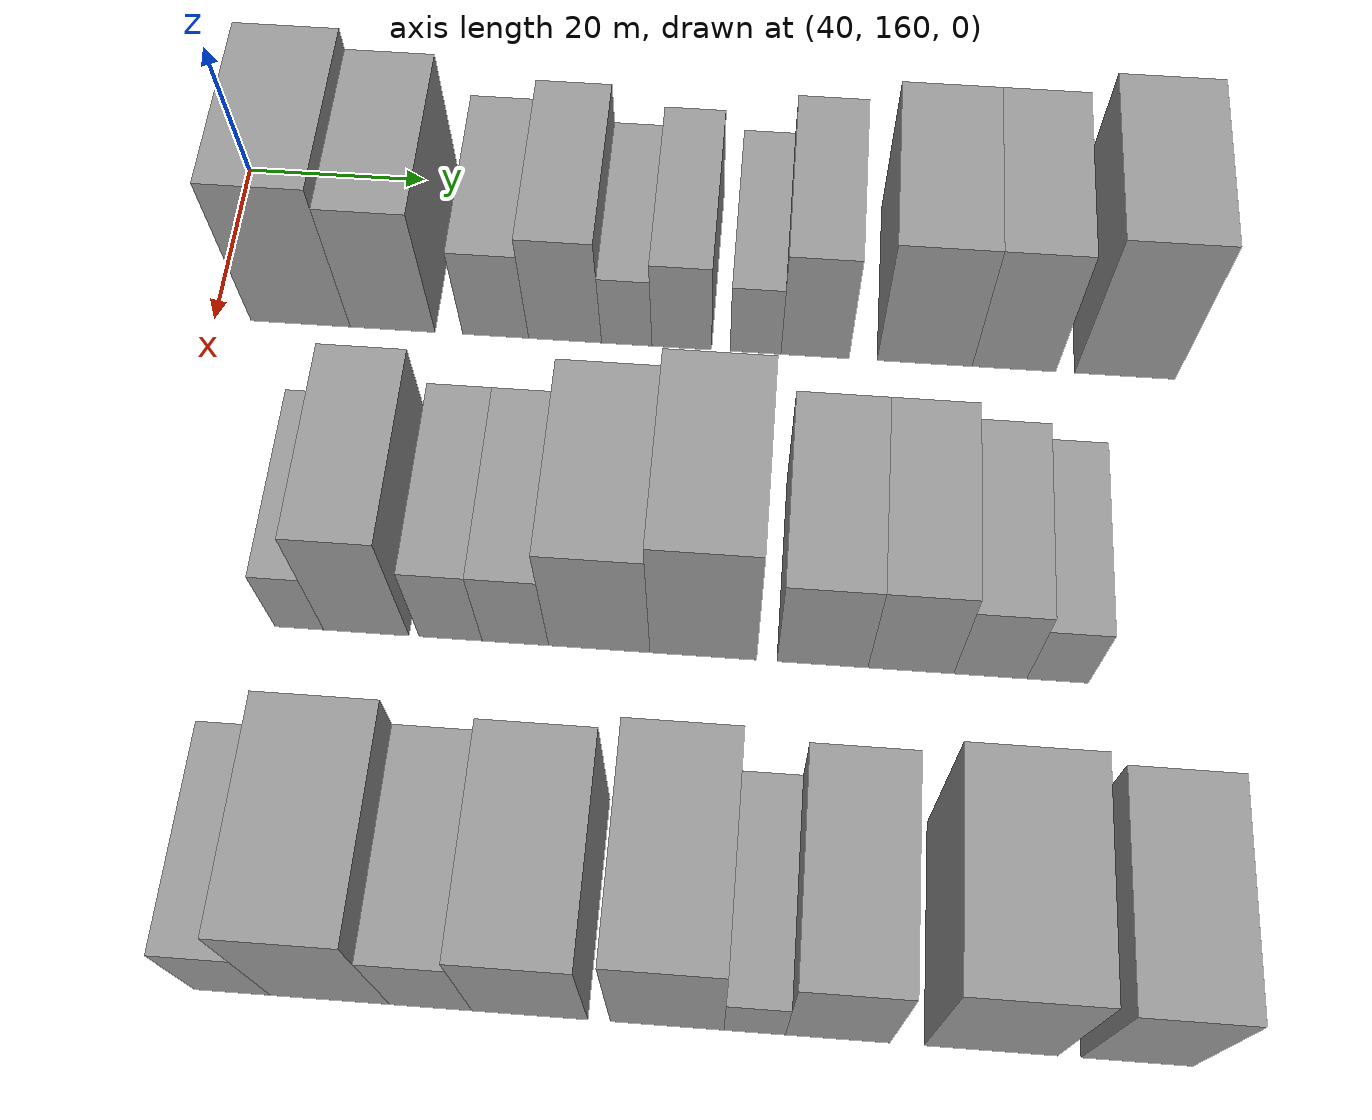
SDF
<sdf version="1.6">
 <world name="default">
  <model name="building_58">
   <static>1</static>
   <pose>50.0000 169.4029 0 0.000000 0.000000 0.000000</pose>
   <link name="link">
    <pose>0 0 12.00 0 0 0</pose>
    <collision name="collision"><geometry><box><size>20.0000 10.8196 24.0000</size></box></geometry></collision>
    <visual name="visual">
     <cast_shadows>0</cast_shadows>
     <geometry><box><size>20.0000 10.8196 24.0000</size></box></geometry>
     <material>
      <script>
       <uri>model://grey_wall/materials/scripts</uri>
       <uri>model://grey_wall/materials/textures</uri>
       <name>vrc/grey_wall</name>
      </script>
     </material>
    </visual>
   </link>
  </model>
  <model name="building_59">
   <static>1</static>
   <pose>50.0000 179.4214 0 0.000000 0.000000 0.000000</pose>
   <link name="link">
    <pose>0 0 10.50 0 0 0</pose>
    <collision name="collision"><geometry><box><size>20.0000 9.2173 21.0000</size></box></geometry></collision>
    <visual name="visual">
     <cast_shadows>0</cast_shadows>
     <geometry><box><size>20.0000 9.2173 21.0000</size></box></geometry>
     <material>
      <script>
       <uri>model://grey_wall/materials/scripts</uri>
       <uri>model://grey_wall/materials/textures</uri>
       <name>vrc/grey_wall</name>
      </script>
     </material>
    </visual>
   </link>
  </model>
  <model name="building_60">
   <static>1</static>
   <pose>50.0000 190.5906 0 0.000000 0.000000 0.000000</pose>
   <link name="link">
    <pose>0 0 7.50 0 0 0</pose>
    <collision name="collision"><geometry><box><size>20.0000 7.1212 15.0000</size></box></geometry></collision>
    <visual name="visual">
     <cast_shadows>0</cast_shadows>
     <geometry><box><size>20.0000 7.1212 15.0000</size></box></geometry>
     <material>
      <script>
       <uri>model://grey_wall/materials/scripts</uri>
       <uri>model://grey_wall/materials/textures</uri>
       <name>vrc/grey_wall</name>
      </script>
     </material>
    </visual>
   </link>
  </model>
  <model name="building_61">
   <static>1</static>
   <pose>50.0000 198.0869 0 0.000000 0.000000 0.000000</pose>
   <link name="link">
    <pose>0 0 9.00 0 0 0</pose>
    <collision name="collision"><geometry><box><size>20.0000 7.8715 18.0000</size></box></geometry></collision>
    <visual name="visual">
     <cast_shadows>0</cast_shadows>
     <geometry><box><size>20.0000 7.8715 18.0000</size></box></geometry>
     <material>
      <script>
       <uri>model://grey_wall/materials/scripts</uri>
       <uri>model://grey_wall/materials/textures</uri>
       <name>vrc/grey_wall</name>
      </script>
     </material>
    </visual>
   </link>
  </model>
  <model name="building_62">
   <static>1</static>
   <pose>50.0000 204.7309 0 0.000000 0.000000 0.000000</pose>
   <link name="link">
    <pose>0 0 6.00 0 0 0</pose>
    <collision name="collision"><geometry><box><size>20.0000 5.4163 12.0000</size></box></geometry></collision>
    <visual name="visual">
     <cast_shadows>0</cast_shadows>
     <geometry><box><size>20.0000 5.4163 12.0000</size></box></geometry>
     <material>
      <script>
       <uri>model://grey_wall/materials/scripts</uri>
       <uri>model://grey_wall/materials/textures</uri>
       <name>vrc/grey_wall</name>
      </script>
     </material>
    </visual>
   </link>
  </model>
  <model name="building_63">
   <static>1</static>
   <pose>50.0000 210.6362 0 0.000000 0.000000 0.000000</pose>
   <link name="link">
    <pose>0 0 7.50 0 0 0</pose>
    <collision name="collision"><geometry><box><size>20.0000 6.3943 15.0000</size></box></geometry></collision>
    <visual name="visual">
     <cast_shadows>0</cast_shadows>
     <geometry><box><size>20.0000 6.3943 15.0000</size></box></geometry>
     <material>
      <script>
       <uri>model://grey_wall/materials/scripts</uri>
       <uri>model://grey_wall/materials/textures</uri>
       <name>vrc/grey_wall</name>
      </script>
     </material>
    </visual>
   </link>
  </model>
  <model name="building_64">
   <static>1</static>
   <pose>50.0000 218.5451 0 0.000000 0.000000 0.000000</pose>
   <link name="link">
    <pose>0 0 6.00 0 0 0</pose>
    <collision name="collision"><geometry><box><size>20.0000 5.4235 12.0000</size></box></geometry></collision>
    <visual name="visual">
     <cast_shadows>0</cast_shadows>
     <geometry><box><size>20.0000 5.4235 12.0000</size></box></geometry>
     <material>
      <script>
       <uri>model://grey_wall/materials/scripts</uri>
       <uri>model://grey_wall/materials/textures</uri>
       <name>vrc/grey_wall</name>
      </script>
     </material>
    </visual>
   </link>
  </model>
  <model name="building_65">
   <static>1</static>
   <pose>50.0000 224.8943 0 0.000000 0.000000 0.000000</pose>
   <link name="link">
    <pose>0 0 9.00 0 0 0</pose>
    <collision name="collision"><geometry><box><size>20.0000 7.2751 18.0000</size></box></geometry></collision>
    <visual name="visual">
     <cast_shadows>0</cast_shadows>
     <geometry><box><size>20.0000 7.2751 18.0000</size></box></geometry>
     <material>
      <script>
       <uri>model://grey_wall/materials/scripts</uri>
       <uri>model://grey_wall/materials/textures</uri>
       <name>vrc/grey_wall</name>
      </script>
     </material>
    </visual>
   </link>
  </model>
  <model name="building_66">
   <static>1</static>
   <pose>50.0000 236.5839 0 0.000000 0.000000 0.000000</pose>
   <link name="link">
    <pose>0 0 10.50 0 0 0</pose>
    <collision name="collision"><geometry><box><size>20.0000 10.1041 21.0000</size></box></geometry></collision>
    <visual name="visual">
     <cast_shadows>0</cast_shadows>
     <geometry><box><size>20.0000 10.1041 21.0000</size></box></geometry>
     <material>
      <script>
       <uri>model://grey_wall/materials/scripts</uri>
       <uri>model://grey_wall/materials/textures</uri>
       <name>vrc/grey_wall</name>
      </script>
     </material>
    </visual>
   </link>
  </model>
  <model name="building_67">
   <static>1</static>
   <pose>50.0000 246.0665 0 0.000000 0.000000 0.000000</pose>
   <link name="link">
    <pose>0 0 10.50 0 0 0</pose>
    <collision name="collision"><geometry><box><size>20.0000 8.8611 21.0000</size></box></geometry></collision>
    <visual name="visual">
     <cast_shadows>0</cast_shadows>
     <geometry><box><size>20.0000 8.8611 21.0000</size></box></geometry>
     <material>
      <script>
       <uri>model://grey_wall/materials/scripts</uri>
       <uri>model://grey_wall/materials/textures</uri>
       <name>vrc/grey_wall</name>
      </script>
     </material>
    </visual>
   </link>
  </model>
  <model name="building_68">
   <static>1</static>
   <pose>50.0000 257.8040 0 0.000000 0.000000 0.000000</pose>
   <link name="link">
    <pose>0 0 12.00 0 0 0</pose>
    <collision name="collision"><geometry><box><size>20.0000 10.6139 24.0000</size></box></geometry></collision>
    <visual name="visual">
     <cast_shadows>0</cast_shadows>
     <geometry><box><size>20.0000 10.6139 24.0000</size></box></geometry>
     <material>
      <script>
       <uri>model://grey_wall/materials/scripts</uri>
       <uri>model://grey_wall/materials/textures</uri>
       <name>vrc/grey_wall</name>
      </script>
     </material>
    </visual>
   </link>
  </model>
  <model name="building_139">
   <static>1</static>
   <pose>85.0000 175.6391 0 0.000000 0.000000 0.000000</pose>
   <link name="link">
    <pose>0 0 6.00 0 0 0</pose>
    <collision name="collision"><geometry><box><size>20.0000 4.8430 12.0000</size></box></geometry></collision>
    <visual name="visual">
     <cast_shadows>0</cast_shadows>
     <geometry><box><size>20.0000 4.8430 12.0000</size></box></geometry>
     <material>
      <script>
       <uri>model://grey_wall/materials/scripts</uri>
       <uri>model://grey_wall/materials/textures</uri>
       <name>vrc/grey_wall</name>
      </script>
     </material>
    </visual>
   </link>
  </model>
  <model name="building_140">
   <static>1</static>
   <pose>85.0000 182.2933 0 0.000000 0.000000 0.000000</pose>
   <link name="link">
    <pose>0 0 10.50 0 0 0</pose>
    <collision name="collision"><geometry><box><size>20.0000 8.4655 21.0000</size></box></geometry></collision>
    <visual name="visual">
     <cast_shadows>0</cast_shadows>
     <geometry><box><size>20.0000 8.4655 21.0000</size></box></geometry>
     <material>
      <script>
       <uri>model://grey_wall/materials/scripts</uri>
       <uri>model://grey_wall/materials/textures</uri>
       <name>vrc/grey_wall</name>
      </script>
     </material>
    </visual>
   </link>
  </model>
  <model name="building_141">
   <static>1</static>
   <pose>85.0000 190.6398 0 0.000000 0.000000 0.000000</pose>
   <link name="link">
    <pose>0 0 7.50 0 0 0</pose>
    <collision name="collision"><geometry><box><size>20.0000 6.2275 15.0000</size></box></geometry></collision>
    <visual name="visual">
     <cast_shadows>0</cast_shadows>
     <geometry><box><size>20.0000 6.2275 15.0000</size></box></geometry>
     <material>
      <script>
       <uri>model://grey_wall/materials/scripts</uri>
       <uri>model://grey_wall/materials/textures</uri>
       <name>vrc/grey_wall</name>
      </script>
     </material>
    </visual>
   </link>
  </model>
  <model name="building_142">
   <static>1</static>
   <pose>85.0000 197.0295 0 0.000000 0.000000 0.000000</pose>
   <link name="link">
    <pose>0 0 7.50 0 0 0</pose>
    <collision name="collision"><geometry><box><size>20.0000 6.5520 15.0000</size></box></geometry></collision>
    <visual name="visual">
     <cast_shadows>0</cast_shadows>
     <geometry><box><size>20.0000 6.5520 15.0000</size></box></geometry>
     <material>
      <script>
       <uri>model://grey_wall/materials/scripts</uri>
       <uri>model://grey_wall/materials/textures</uri>
       <name>vrc/grey_wall</name>
      </script>
     </material>
    </visual>
   </link>
  </model>
  <model name="building_143">
   <static>1</static>
   <pose>85.0000 205.2794 0 0.000000 0.000000 0.000000</pose>
   <link name="link">
    <pose>0 0 10.50 0 0 0</pose>
    <collision name="collision"><geometry><box><size>20.0000 9.9479 21.0000</size></box></geometry></collision>
    <visual name="visual">
     <cast_shadows>0</cast_shadows>
     <geometry><box><size>20.0000 9.9479 21.0000</size></box></geometry>
     <material>
      <script>
       <uri>model://grey_wall/materials/scripts</uri>
       <uri>model://grey_wall/materials/textures</uri>
       <name>vrc/grey_wall</name>
      </script>
     </material>
    </visual>
   </link>
  </model>
  <model name="building_144">
   <static>1</static>
   <pose>85.0000 215.4670 0 0.000000 0.000000 0.000000</pose>
   <link name="link">
    <pose>0 0 12.00 0 0 0</pose>
    <collision name="collision"><geometry><box><size>20.0000 10.4274 24.0000</size></box></geometry></collision>
    <visual name="visual">
     <cast_shadows>0</cast_shadows>
     <geometry><box><size>20.0000 10.4274 24.0000</size></box></geometry>
     <material>
      <script>
       <uri>model://grey_wall/materials/scripts</uri>
       <uri>model://grey_wall/materials/textures</uri>
       <name>vrc/grey_wall</name>
      </script>
     </material>
    </visual>
   </link>
  </model>
  <model name="building_145">
   <static>1</static>
   <pose>85.0000 227.1055 0 0.000000 0.000000 0.000000</pose>
   <link name="link">
    <pose>0 0 9.00 0 0 0</pose>
    <collision name="collision"><geometry><box><size>20.0000 8.8495 18.0000</size></box></geometry></collision>
    <visual name="visual">
     <cast_shadows>0</cast_shadows>
     <geometry><box><size>20.0000 8.8495 18.0000</size></box></geometry>
     <material>
      <script>
       <uri>model://grey_wall/materials/scripts</uri>
       <uri>model://grey_wall/materials/textures</uri>
       <name>vrc/grey_wall</name>
      </script>
     </material>
    </visual>
   </link>
  </model>
  <model name="building_146">
   <static>1</static>
   <pose>85.0000 235.6977 0 0.000000 0.000000 0.000000</pose>
   <link name="link">
    <pose>0 0 9.00 0 0 0</pose>
    <collision name="collision"><geometry><box><size>20.0000 8.3350 18.0000</size></box></geometry></collision>
    <visual name="visual">
     <cast_shadows>0</cast_shadows>
     <geometry><box><size>20.0000 8.3350 18.0000</size></box></geometry>
     <material>
      <script>
       <uri>model://grey_wall/materials/scripts</uri>
       <uri>model://grey_wall/materials/textures</uri>
       <name>vrc/grey_wall</name>
      </script>
     </material>
    </visual>
   </link>
  </model>
  <model name="building_147">
   <static>1</static>
   <pose>85.0000 243.4064 0 0.000000 0.000000 0.000000</pose>
   <link name="link">
    <pose>0 0 7.50 0 0 0</pose>
    <collision name="collision"><geometry><box><size>20.0000 7.0822 15.0000</size></box></geometry></collision>
    <visual name="visual">
     <cast_shadows>0</cast_shadows>
     <geometry><box><size>20.0000 7.0822 15.0000</size></box></geometry>
     <material>
      <script>
       <uri>model://grey_wall/materials/scripts</uri>
       <uri>model://grey_wall/materials/textures</uri>
       <name>vrc/grey_wall</name>
      </script>
     </material>
    </visual>
   </link>
  </model>
  <model name="building_148">
   <static>1</static>
   <pose>85.0000 249.9218 0 0.000000 0.000000 0.000000</pose>
   <link name="link">
    <pose>0 0 6.00 0 0 0</pose>
    <collision name="collision"><geometry><box><size>20.0000 5.9487 12.0000</size></box></geometry></collision>
    <visual name="visual">
     <cast_shadows>0</cast_shadows>
     <geometry><box><size>20.0000 5.9487 12.0000</size></box></geometry>
     <material>
      <script>
       <uri>model://grey_wall/materials/scripts</uri>
       <uri>model://grey_wall/materials/textures</uri>
       <name>vrc/grey_wall</name>
      </script>
     </material>
    </visual>
   </link>
  </model>
  <model name="building_223">
   <static>1</static>
   <pose>120.0000 175.9668 0 0.000000 0.000000 0.000000</pose>
   <link name="link">
    <pose>0 0 7.50 0 0 0</pose>
    <collision name="collision"><geometry><box><size>20.0000 6.8644 15.0000</size></box></geometry></collision>
    <visual name="visual">
     <cast_shadows>0</cast_shadows>
     <geometry><box><size>20.0000 6.8644 15.0000</size></box></geometry>
     <material>
      <script>
       <uri>model://grey_wall/materials/scripts</uri>
       <uri>model://grey_wall/materials/textures</uri>
       <name>vrc/grey_wall</name>
      </script>
     </material>
    </visual>
   </link>
  </model>
  <model name="building_224">
   <static>1</static>
   <pose>120.0000 184.7615 0 0.000000 0.000000 0.000000</pose>
   <link name="link">
    <pose>0 0 12.00 0 0 0</pose>
    <collision name="collision"><geometry><box><size>20.0000 10.7251 24.0000</size></box></geometry></collision>
    <visual name="visual">
     <cast_shadows>0</cast_shadows>
     <geometry><box><size>20.0000 10.7251 24.0000</size></box></geometry>
     <material>
      <script>
       <uri>model://grey_wall/materials/scripts</uri>
       <uri>model://grey_wall/materials/textures</uri>
       <name>vrc/grey_wall</name>
      </script>
     </material>
    </visual>
   </link>
  </model>
  <model name="building_225">
   <static>1</static>
   <pose>120.0000 193.8026 0 0.000000 0.000000 0.000000</pose>
   <link name="link">
    <pose>0 0 9.00 0 0 0</pose>
    <collision name="collision"><geometry><box><size>20.0000 7.3569 18.0000</size></box></geometry></collision>
    <visual name="visual">
     <cast_shadows>0</cast_shadows>
     <geometry><box><size>20.0000 7.3569 18.0000</size></box></geometry>
     <material>
      <script>
       <uri>model://grey_wall/materials/scripts</uri>
       <uri>model://grey_wall/materials/textures</uri>
       <name>vrc/grey_wall</name>
      </script>
     </material>
    </visual>
   </link>
  </model>
  <model name="building_226">
   <static>1</static>
   <pose>120.0000 202.6344 0 0.000000 0.000000 0.000000</pose>
   <link name="link">
    <pose>0 0 10.50 0 0 0</pose>
    <collision name="collision"><geometry><box><size>20.0000 10.3068 21.0000</size></box></geometry></collision>
    <visual name="visual">
     <cast_shadows>0</cast_shadows>
     <geometry><box><size>20.0000 10.3068 21.0000</size></box></geometry>
     <material>
      <script>
       <uri>model://grey_wall/materials/scripts</uri>
       <uri>model://grey_wall/materials/textures</uri>
       <name>vrc/grey_wall</name>
      </script>
     </material>
    </visual>
   </link>
  </model>
  <model name="building_227">
   <static>1</static>
   <pose>120.0000 214.8118 0 0.000000 0.000000 0.000000</pose>
   <link name="link">
    <pose>0 0 12.00 0 0 0</pose>
    <collision name="collision"><geometry><box><size>20.0000 10.0480 24.0000</size></box></geometry></collision>
    <visual name="visual">
     <cast_shadows>0</cast_shadows>
     <geometry><box><size>20.0000 10.0480 24.0000</size></box></geometry>
     <material>
      <script>
       <uri>model://grey_wall/materials/scripts</uri>
       <uri>model://grey_wall/materials/textures</uri>
       <name>vrc/grey_wall</name>
      </script>
     </material>
    </visual>
   </link>
  </model>
  <model name="building_228">
   <static>1</static>
   <pose>120.0000 222.5471 0 0.000000 0.000000 0.000000</pose>
   <link name="link">
    <pose>0 0 6.00 0 0 0</pose>
    <collision name="collision"><geometry><box><size>20.0000 5.4225 12.0000</size></box></geometry></collision>
    <visual name="visual">
     <cast_shadows>0</cast_shadows>
     <geometry><box><size>20.0000 5.4225 12.0000</size></box></geometry>
     <material>
      <script>
       <uri>model://grey_wall/materials/scripts</uri>
       <uri>model://grey_wall/materials/textures</uri>
       <name>vrc/grey_wall</name>
      </script>
     </material>
    </visual>
   </link>
  </model>
  <model name="building_229">
   <static>1</static>
   <pose>120.0000 229.8653 0 0.000000 0.000000 0.000000</pose>
   <link name="link">
    <pose>0 0 10.50 0 0 0</pose>
    <collision name="collision"><geometry><box><size>20.0000 9.2140 21.0000</size></box></geometry></collision>
    <visual name="visual">
     <cast_shadows>0</cast_shadows>
     <geometry><box><size>20.0000 9.2140 21.0000</size></box></geometry>
     <material>
      <script>
       <uri>model://grey_wall/materials/scripts</uri>
       <uri>model://grey_wall/materials/textures</uri>
       <name>vrc/grey_wall</name>
      </script>
     </material>
    </visual>
   </link>
  </model>
  <model name="building_230">
   <static>1</static>
   <pose>120.0000 243.3256 0 0.000000 0.000000 0.000000</pose>
   <link name="link">
    <pose>0 0 12.00 0 0 0</pose>
    <collision name="collision"><geometry><box><size>20.0000 11.7066 24.0000</size></box></geometry></collision>
    <visual name="visual">
     <cast_shadows>0</cast_shadows>
     <geometry><box><size>20.0000 11.7066 24.0000</size></box></geometry>
     <material>
      <script>
       <uri>model://grey_wall/materials/scripts</uri>
       <uri>model://grey_wall/materials/textures</uri>
       <name>vrc/grey_wall</name>
      </script>
     </material>
    </visual>
   </link>
  </model>
  <model name="building_231">
   <static>1</static>
   <pose>120.0000 256.0604 0 0.000000 0.000000 0.000000</pose>
   <link name="link">
    <pose>0 0 10.50 0 0 0</pose>
    <collision name="collision"><geometry><box><size>20.0000 9.7629 21.0000</size></box></geometry></collision>
    <visual name="visual">
     <cast_shadows>0</cast_shadows>
     <geometry><box><size>20.0000 9.7629 21.0000</size></box></geometry>
     <material>
      <script>
       <uri>model://grey_wall/materials/scripts</uri>
       <uri>model://grey_wall/materials/textures</uri>
       <name>vrc/grey_wall</name>
      </script>
     </material>
    </visual>
   </link>
  </model>
 </world>
</sdf>
